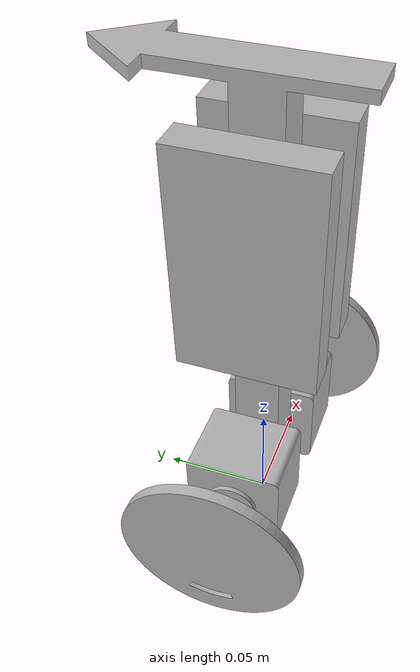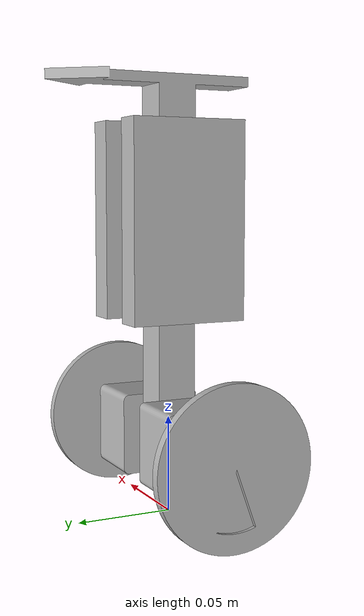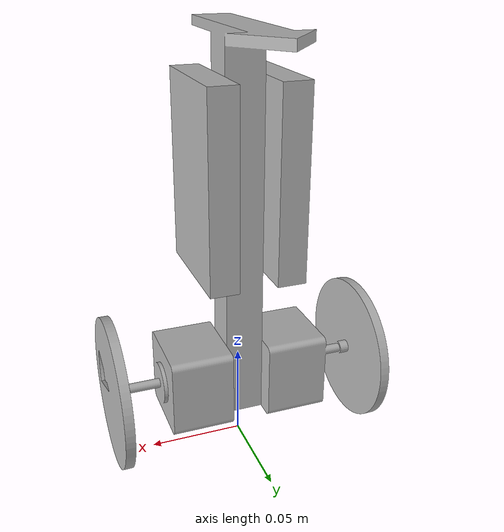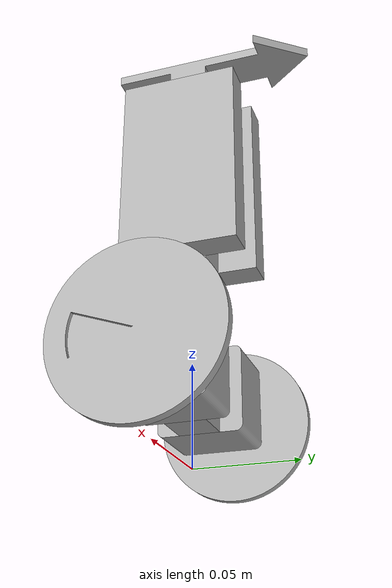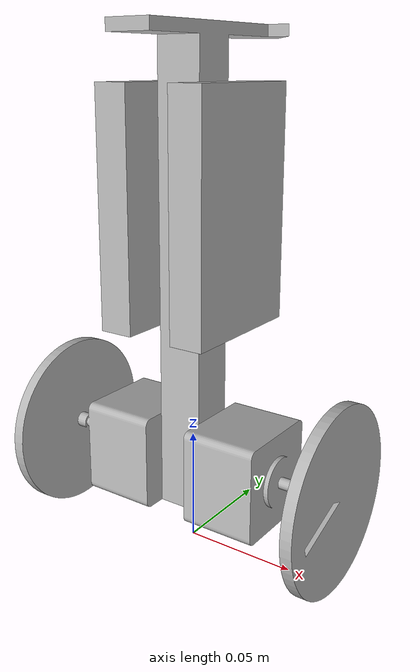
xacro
<?xml version="1.0" ?>
<robot name="BiStable" xmlns:xacro="http://www.ros.org/wiki/xacro">

<xacro:include filename="$(find BiStable_description)/urdf/materials.xacro" />
<xacro:include filename="$(find BiStable_description)/urdf/BiStable.trans" />
<xacro:include filename="$(find BiStable_description)/urdf/BiStable.gazebo" />

<link name="base_footprint"/>

<link name="base_link">
  <inertial>
    <origin xyz="0.0 0.0013351749539594884 0.11189226519337016" rpy="0 0 0"/>
    <mass value="0.710425"/>
    <inertia ixx="0.002959" iyy="0.002883" izz="0.000124" ixy="0.0" iyz="-8.6e-05" ixz="0.0"/>
  </inertial>
  <visual>
    <origin xyz="0 0 0" rpy="0 0 0"/>
    <geometry>
      <mesh filename="file://$(find BiStable_description)/meshes/base_link.stl" scale="0.001 0.001 0.001"/>
    </geometry>
    <material name="silver"/>
  </visual>
  <collision>
    <origin xyz="0 0 0" rpy="0 0 0"/>
    <geometry>
      <mesh filename="file://$(find BiStable_description)/meshes/base_link.stl" scale="0.001 0.001 0.001"/>
    </geometry>
  </collision>
</link>

<link name="right_stepper_1">
  <inertial>
    <origin xyz="0.016940372677690052 -4.805080613014999e-18 -0.0815000000000334" rpy="0 0 0"/>
    <mass value="0.46432190632670445"/>
    <inertia ixx="0.000133" iyy="0.000113" izz="0.000113" ixy="-0.0" iyz="0.0" ixz="0.0"/>
  </inertial>
  <visual>
    <origin xyz="-0.01 -0.0 -0.1025" rpy="0 0 0"/>
    <geometry>
      <mesh filename="file://$(find BiStable_description)/meshes/right_stepper_1.stl" scale="0.001 0.001 0.001"/>
    </geometry>
    <material name="silver"/>
  </visual>
  <collision>
    <origin xyz="-0.01 -0.0 -0.1025" rpy="0 0 0"/>
    <geometry>
      <mesh filename="file://$(find BiStable_description)/meshes/right_stepper_1.stl" scale="0.001 0.001 0.001"/>
    </geometry>
  </collision>
</link>

<link name="left_stepper_1">
  <inertial>
    <origin xyz="-0.01694037267769006 -2.4025403065054546e-18 -0.08149999999996663" rpy="0 0 0"/>
    <mass value="0.4643219063267044"/>
    <inertia ixx="0.000133" iyy="0.000113" izz="0.000113" ixy="0.0" iyz="-0.0" ixz="0.0"/>
  </inertial>
  <visual>
    <origin xyz="0.01 -0.0 -0.1025" rpy="0 0 0"/>
    <geometry>
      <mesh filename="file://$(find BiStable_description)/meshes/left_stepper_1.stl" scale="0.001 0.001 0.001"/>
    </geometry>
    <material name="silver"/>
  </visual>
  <collision>
    <origin xyz="0.01 -0.0 -0.1025" rpy="0 0 0"/>
    <geometry>
      <mesh filename="file://$(find BiStable_description)/meshes/left_stepper_1.stl" scale="0.001 0.001 0.001"/>
    </geometry>
  </collision>
</link>

<link name="right_wheel_1">
  <inertial>
    <origin xyz="0.0024425287356322073 0.0005005443351473899 -3.6290415117434804e-15" rpy="0 0 0"/>
    <mass value="0.19309956324922345"/>
    <inertia ixx="0.000156" iyy="7.9e-05" izz="7.7e-05" ixy="-0.0" iyz="-0.0" ixz="-0.0"/>
  </inertial>
  <visual>
    <origin xyz="-0.067 0.0 -0.021" rpy="0 0 0"/>
    <geometry>
      <mesh filename="file://$(find BiStable_description)/meshes/right_wheel_1.stl" scale="0.001 0.001 0.001"/>
    </geometry>
    <material name="silver"/>
  </visual>
  <collision>
    <origin xyz="-0.067 0.0 -0.021" rpy="0 0 0"/>
    <geometry>
      <mesh filename="file://$(find BiStable_description)/meshes/right_wheel_1.stl" scale="0.001 0.001 0.001"/>
    </geometry>
  </collision>
</link>

<link name="left_wheel_1">
  <inertial>
    <origin xyz="-0.0024425287356322073 -1.7392546308187155e-17 0.0005005443351510167" rpy="0 0 0"/>
    <mass value="0.1930995632492234"/>
    <inertia ixx="0.000156" iyy="7.7e-05" izz="7.9e-05" ixy="-0.0" iyz="0.0" ixz="0.0"/>
  </inertial>
  <visual>
    <origin xyz="0.067 -0.0 -0.021" rpy="0 0 0"/>
    <geometry>
      <mesh filename="file://$(find BiStable_description)/meshes/left_wheel_1.stl" scale="0.001 0.001 0.001"/>
    </geometry>
    <material name="silver"/>
  </visual>
  <collision>
    <origin xyz="0.067 -0.0 -0.021" rpy="0 0 0"/>
    <geometry>
      <mesh filename="file://$(find BiStable_description)/meshes/left_wheel_1.stl" scale="0.001 0.001 0.001"/>
    </geometry>
  </collision>
</link>

<link name="rpi_1">
  <inertial>
    <origin xyz="-0.0075000000000000015 0.0 0.030000000000000013" rpy="0 0 0"/>
    <mass value="0.7064999999999999"/>
    <inertia ixx="0.000801" iyy="0.000602" izz="0.000225" ixy="0.0" iyz="0.0" ixz="-0.0"/>
  </inertial>
  <visual>
    <origin xyz="0.01 -0.0 -0.1025" rpy="0 0 0"/>
    <geometry>
      <mesh filename="file://$(find BiStable_description)/meshes/rpi_1.stl" scale="0.001 0.001 0.001"/>
    </geometry>
    <material name="silver"/>
  </visual>
  <collision>
    <origin xyz="0.01 -0.0 -0.1025" rpy="0 0 0"/>
    <geometry>
      <mesh filename="file://$(find BiStable_description)/meshes/rpi_1.stl" scale="0.001 0.001 0.001"/>
    </geometry>
  </collision>
</link>

<link name="NUCLEO_1">
  <inertial>
    <origin xyz="0.0075000000000000015 0.0 0.030000000000000013" rpy="0 0 0"/>
    <mass value="0.7064999999999999"/>
    <inertia ixx="0.000801" iyy="0.000602" izz="0.000225" ixy="0.0" iyz="0.0" ixz="0.0"/>
  </inertial>
  <visual>
    <origin xyz="-0.01 -0.0 -0.1025" rpy="0 0 0"/>
    <geometry>
      <mesh filename="file://$(find BiStable_description)/meshes/NUCLEO_1.stl" scale="0.001 0.001 0.001"/>
    </geometry>
    <material name="silver"/>
  </visual>
  <collision>
    <origin xyz="-0.01 -0.0 -0.1025" rpy="0 0 0"/>
    <geometry>
      <mesh filename="file://$(find BiStable_description)/meshes/NUCLEO_1.stl" scale="0.001 0.001 0.001"/>
    </geometry>
  </collision>
</link>

<joint name="base_footprint_link" type="fixed">
  <parent link="base_footprint"/>
  <child link="base_link"/>
  <origin xyz="0.0 0.0 0.019" rpy="0.0 0.0 0.0"/>
</joint>

<joint name="Rigid 17" type="fixed">
  <origin xyz="0.01 0.0 0.1025" rpy="0 0 0"/>
  <parent link="base_link"/>
  <child link="right_stepper_1"/>
</joint>

<joint name="Rigid 18" type="fixed">
  <origin xyz="-0.01 0.0 0.1025" rpy="0 0 0"/>
  <parent link="base_link"/>
  <child link="left_stepper_1"/>
</joint>

<joint name="Revolute 19" type="continuous">
  <origin xyz="0.057 -0.0 -0.0815" rpy="0 0 0"/>
  <parent link="right_stepper_1"/>
  <child link="right_wheel_1"/>
  <axis xyz="1.0 0.0 0.0"/>
</joint>

<joint name="Revolute 20" type="continuous">
  <origin xyz="-0.057 0.0 -0.0815" rpy="0 0 0"/>
  <parent link="left_stepper_1"/>
  <child link="left_wheel_1"/>
  <axis xyz="-1.0 0.0 0.0"/>
</joint>

<joint name="Rigid 21" type="fixed">
  <origin xyz="-0.01 0.0 0.1025" rpy="0 0 0"/>
  <parent link="base_link"/>
  <child link="rpi_1"/>
</joint>

<joint name="Rigid 22" type="fixed">
  <origin xyz="0.01 0.0 0.1025" rpy="0 0 0"/>
  <parent link="base_link"/>
  <child link="NUCLEO_1"/>
</joint>

</robot>

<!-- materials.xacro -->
<robot name="BiStable" xmlns:xacro="http://www.ros.org/wiki/xacro" >

<material name="silver">
  <color rgba="0.700 0.700 0.700 1.000"/>
</material>

</robot>

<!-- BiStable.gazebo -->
<robot name="BiStable" xmlns:xacro="http://www.ros.org/wiki/xacro" >

<xacro:property name="body_color" value="Gazebo/Silver" />

<gazebo>
  <plugin name="diff_drive_controller" filename="libgazebo_ros_diff_drive.so">
    <!-- Update rate in Hz -->
    <update_rate>50</update_rate>

    <!-- wheels -->
    <left_joint>Revolute 20</left_joint>
    <right_joint>Revolute 19</right_joint>

    <!-- kinematics -->
    <wheel_separation>0.226</wheel_separation>
    <wheel_diameter>0.07</wheel_diameter>

    <!-- limits -->
    <max_wheel_torque>200</max_wheel_torque>
    <max_wheel_acceleration>10</max_wheel_acceleration>

    <!-- input -->

    <!-- output -->
    <publish_odom>true</publish_odom>
    <publish_odom_tf>true</publish_odom_tf>
    <publish_wheel_tf>true</publish_wheel_tf>

    <odometry_frame>odom</odometry_frame>
    <robot_base_frame>base_footprint</robot_base_frame>
  </plugin>
</gazebo>

<gazebo reference="base_link">
  <material>${body_color}</material>
  <mu1>0.2</mu1>
  <mu2>0.2</mu2>
  <self_collide>true</self_collide>
  <gravity>true</gravity>
</gazebo>

<gazebo reference="right_stepper_1">
  <material>${body_color}</material>
  <mu1>0.2</mu1>
  <mu2>0.2</mu2>
  <self_collide>true</self_collide>
</gazebo>

<gazebo reference="left_stepper_1">
  <material>${body_color}</material>
  <mu1>0.2</mu1>
  <mu2>0.2</mu2>
  <self_collide>true</self_collide>
</gazebo>

<gazebo reference="right_wheel_1">
  <material>${body_color}</material>
  <mu1>0.2</mu1>
  <mu2>0.2</mu2>
  <self_collide>true</self_collide>
</gazebo>

<gazebo reference="left_wheel_1">
  <material>${body_color}</material>
  <mu1>0.2</mu1>
  <mu2>0.2</mu2>
  <self_collide>true</self_collide>
</gazebo>

<gazebo reference="rpi_1">
  <material>${body_color}</material>
  <mu1>0.2</mu1>
  <mu2>0.2</mu2>
  <self_collide>true</self_collide>
</gazebo>

<gazebo reference="NUCLEO_1">
  <material>${body_color}</material>
  <mu1>0.2</mu1>
  <mu2>0.2</mu2>
  <self_collide>true</self_collide>
</gazebo>

</robot>
